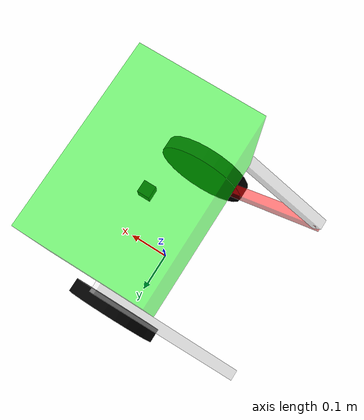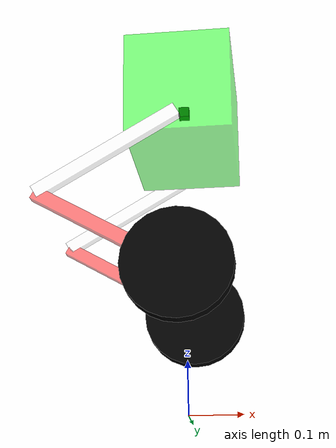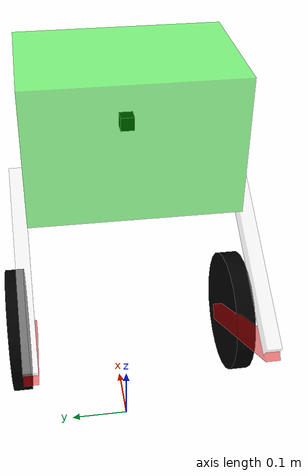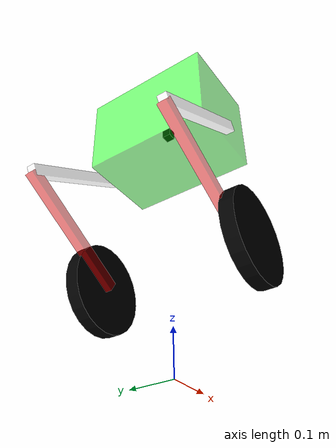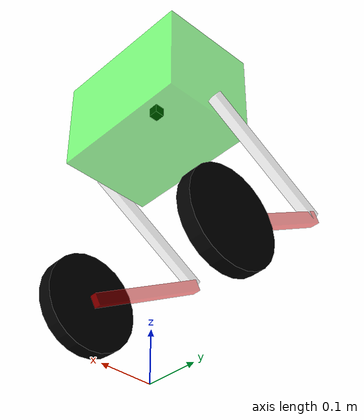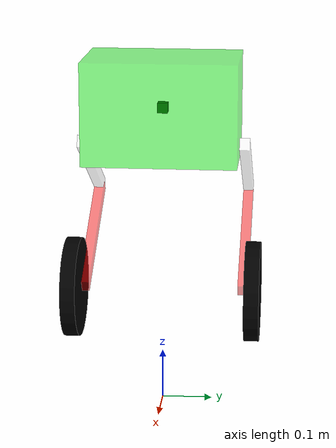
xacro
<?xml version="1.0"?>
<robot xmlns:xacro="http://www.ros.org/wiki/xacro" name="series_wheel_legged_robot">
<!-- base -->
<xacro:include filename="$(find robot_description_pkg)/urdf/base_link.urdf.xacro"/>
<xacro:include filename="$(find robot_description_pkg)/urdf/leg_link.urdf.xacro"/>
<!-- actor -->
<xacro:include filename="$(find robot_description_pkg)/urdf/actor/wheel_link.urdf.xacro"/>
<!-- sensor -->
<xacro:include filename="$(find robot_description_pkg)/urdf/sensor/imu_link.urdf.xacro"/>
<!-- ros2_control -->
<xacro:include filename="$(find robot_description_pkg)/urdf/series_wheel_legged_robot.ros2_control.xacro"/>
<!--plugins-->
<xacro:include filename="$(find robot_description_pkg)/plugins/gazebo_sensor_imu.xacro"/>

<xacro:base_link_xacro xyz="0.0 0.0 0.6"/>
<xacro:leg_link_xacro position="left" xyz="0.0 -0.16 -0.07" />
<xacro:leg_link_xacro position="right" xyz="0.0 0.16 -0.07" />
<xacro:wheel_link_xacro position="left" xyz="0.0 -0.02 -0.3"/>
<xacro:wheel_link_xacro position="right" xyz="0.0 0.02 -0.3"/>
<xacro:imu_link_xacro/>
<xacro:series_wheel_legged_robot_ros2_control/>
<xacro:gazebo_sensor_imu_plugin/>

</robot>

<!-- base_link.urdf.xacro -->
<robot xmlns:xacro="http://www.ros.org/wiki/xacro">
<xacro:include filename="$(find robot_description_pkg)/urdf/common_inertia.xacro"/>
    <xacro:macro name="base_link_xacro" params="xyz">

        <link name="base_footprint_link"/>

        <link name="base_link">

            <visual>
                <origin xyz="0.0 0.0 0.0" rpy="0.0 0.0 0.0"/>
                <geometry>
                    <box size="0.2 0.3 0.2"/>
                </geometry>
                <material name="green">
                    <color rgba="0.0 1.0 0.0 0.5"/>
                </material>
            </visual>

            <collision>
                <origin xyz="0.0 0.0 0.0" rpy="0.0 0.0 0.0"/>
                <geometry>
                    <box size="0.2 0.3 0.2"/>
                </geometry>
                <material name="green">
                    <color rgba="0.0 1.0 0.0 0.5"/>
                </material>
            </collision>

            <xacro:box_inertia m="3.0" w="0.2" h="0.3" d="0.2" xyz="0.0 0.0 0.0" rpy="0.0 0.0 0.0"/>

        </link>

        <joint name="base_link_joint" type="fixed">
            <origin xyz="${xyz}" rpy="0.0 0.0 0.0"/>
            <parent link="base_footprint_link"/>
            <child link="base_link"/>
        </joint>

        <gazebo reference="base_link">
	        <material>Gazebo/Green</material>
        </gazebo>
    </xacro:macro>

</robot>

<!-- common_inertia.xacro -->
<robot xmlns:xacro="http://ros.org/wiki/xacro">
    <xacro:macro name="box_inertia" params="m w h d xyz rpy">
        <inertial>
            <origin xyz="${xyz}" rpy="${rpy}"/>
            <mass value="${m}" />
            <inertia ixx="${(m/12) * (h*h + d*d)}" ixy="0.0" ixz="0.0" iyy="${(m/12) * (w*w + d*d)}" iyz="0.0" izz="${(m/12) * (w*w + h*h)}" />
        </inertial>
    </xacro:macro>

    <xacro:macro name="cylinder_inertia_z" params="m r h xyz rpy">
        <inertial>
            <origin xyz="${xyz}" rpy="${rpy}"/>
            <mass value="${m}" />
            <inertia ixx="${(m/12) * (3*r*r + h*h)}" ixy="0" ixz="0" iyy="${(m/12) * (3*r*r + h*h)}" iyz="0" izz="${(m/2) * (r*r)}" />
        </inertial>
    </xacro:macro>

    <xacro:macro name="cylinder_inertia_y" params="m r h xyz rpy">
        <inertial>
            <origin xyz="${xyz}" rpy="${rpy}"/>
            <mass value="${m}" />
            <inertia ixx="${(m/12) * (3*r*r + h*h)}" ixy="0" ixz="0" iyy="${(m/2) * (r*r)}" iyz="0" izz="${(m/12) * (3*r*r + h*h)}" />
        </inertial>
    </xacro:macro>

    <xacro:macro name="sphere_inertia" params="m r xyz rpy">
        <inertial>
            <origin xyz="${xyz}" rpy="${rpy}"/>
            <mass value="${m}" />
            <inertia ixx="${(2/5) * m * (r*r)}" ixy="0.0" ixz="0.0" iyy="${(2/5) * m * (r*r)}" iyz="0.0" izz="${(2/5) * m * (r*r)}" />
        </inertial>
    </xacro:macro>

</robot>

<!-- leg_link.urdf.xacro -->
<robot xmlns:xacro="http://www.ros.org/wiki/xacro">
<xacro:include filename="$(find robot_description_pkg)/urdf/common_inertia.xacro"/>
    <xacro:macro name="leg_link_xacro" params="position xyz">

        <link name="${position}_thigh_link">

            <visual>
                <origin xyz="0.0 0.0 -0.15" rpy="0.0 0.0 0.0"/>
                <geometry>
                    <box size="0.025 0.02 0.3"/>
                </geometry>
                <material name="white">
                    <color rgba="1.0 1.0 1.0 0.5"/>
                </material>
            </visual>

            <collision>
                <origin xyz="0.0 0.0 -0.15" rpy="0.0 0.0 0.0"/>
                <geometry>
                    <box size="0.025 0.02 0.3"/>
                </geometry>
                <material name="white">
                    <color rgba="1.0 1.0 1.0 0.5"/>
                </material>
            </collision>

            <xacro:box_inertia m="0.135" w="0.025" h="0.02" d="0.3" xyz="0.0 0.0 -0.15" rpy="0.0 0.0 0.0"/>

        </link>

        <link name="${position}_shank_link">

            <visual>
                <origin xyz="0.0 0.0 -0.15" rpy="0.0 0.0 0.0"/>
                <geometry>
                    <box size="0.025 0.02 0.3"/>
                </geometry>
                <material name="white">
                    <color rgba="1.0 0.0 0.0 0.5"/>
                </material>
            </visual>

            <collision>
                <origin xyz="0.0 0.0 -0.15" rpy="0.0 0.0 0.0"/>
                <geometry>
                    <box size="0.025 0.02 0.3"/>
                </geometry>
                <material name="white">
                    <color rgba="1.0 0.0 0.0 0.5"/>
                </material>
            </collision>

            <xacro:box_inertia m="0.135" w="0.025" h="0.02" d="0.3" xyz="0.0 0.0 -0.15" rpy="0.0 0.0 0.0"/>

        </link>

        <joint name="${position}_hip_joint" type="continuous">
            <origin xyz="${xyz}" rpy="0.0 1.04719755 0.0"/>
            <parent link="base_link"/>
            <child link="${position}_thigh_link"/>
            <axis xyz="0.0 1.0 0.0"/>
        </joint>

        <joint name="${position}_knee_joint" type="continuous">
            <origin xyz="0.0 0.0 -0.3" rpy="0.0 -2.094395102 0.0"/>
            <parent link="${position}_thigh_link"/>
            <child link="${position}_shank_link"/>
            <axis xyz="0.0 1.0 0.0"/>
        </joint>

    </xacro:macro>

</robot>

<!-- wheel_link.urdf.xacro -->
<robot xmlns:xacro="http://www.ros.org/wiki/xacro">
<xacro:include filename="$(find robot_description_pkg)/urdf/common_inertia.xacro"/>
    <xacro:macro name="wheel_link_xacro" params="position xyz">
        <link name="${position}_wheel_link">

            <visual>
                <origin xyz="0.0 0.0 0.0" rpy="1.57079 0.0 0.0"/>
                <geometry>
                    <cylinder radius="0.1" length="0.03"/>
                </geometry>
                <material name="black">
                    <color rgba="0.0 0.0 0.0 1.0"/>
                </material>
            </visual>

            <collision>
                <origin xyz="0.0 0.0 0.0" rpy="1.57079 0.0 0.0"/>
                <geometry>
                    <cylinder radius="0.1" length="0.03"/>
                </geometry>
                <material name="black">
                    <color rgba="0.0 0.0 0.0 1.0"/>
                </material>
            </collision>

            <xacro:cylinder_inertia_y m="1.18" r="0.1" h="0.03" xyz="0.0 0.0 0.0" rpy="0.0 0.0 0.0"/>

        </link>

        <joint name="${position}_wheel_joint" type="continuous">
            <origin xyz="${xyz}" rpy="0.0 0.0 0.0"/>
            <parent link="${position}_shank_link"/>
            <child link="${position}_wheel_link"/>
            <axis xyz="0.0 1.0 0.0"/>
        </joint>

         <gazebo reference="${position}_wheel_link">
	        <material>Gazebo/Yellow</material>
	        <mu1 value="20.0"/>
	        <mu2 value="20.0"/>
	        <kp value="1000000000000000.0"/>
	        <kd value="1.0"/>
        </gazebo>

    </xacro:macro>

</robot>

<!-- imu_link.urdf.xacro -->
<robot xmlns:xacro="http://www.ros.org/wiki/xacro">
<xacro:include filename="$(find robot_description_pkg)/urdf/common_inertia.xacro"/>

    <xacro:macro name="imu_link_xacro">
        <link name="imu_link">

            <visual>
                <origin xyz="0.0 0.0 0.0" rpy="0.0 0.0 0.0"/>
                <geometry>
                    <box size="0.02 0.02 0.02"/>
                </geometry>
                <material name="black">
                    <color rgba="0.0 0.0 0.0 1.0"/>
                </material>
            </visual>

            <xacro:box_inertia m="0.01" w="0.12" h="0.12" d="0.12" xyz="0.0 0.0 0.0" rpy="0.0 0.0 0.0"/>

        </link>

        <joint name="joint_name" type="fixed">
            <origin xyz="0.0 0.0 0.0" rpy="0.0 0.0 0.0"/>
            <parent link="base_link"/>
            <child link="imu_link"/>
        </joint>

    </xacro:macro>

</robot>
